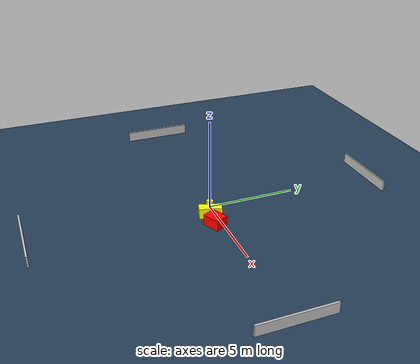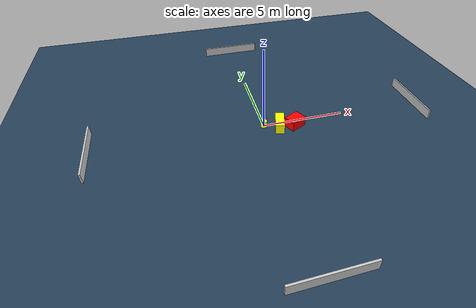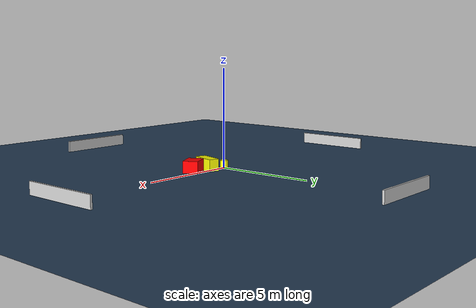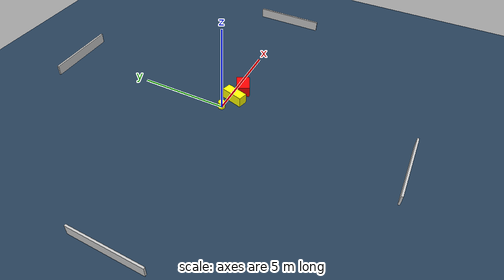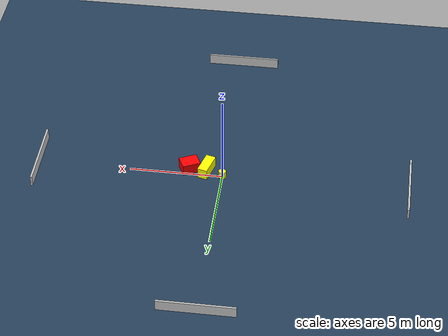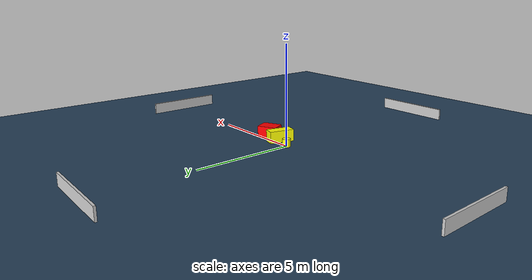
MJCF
<?xml version="1.0" ?>
<mujoco model="generated_environment">
  <option timestep="0.01" integrator="RK4" cone="elliptic"/>
  <default>
    <geom density="1"/>
  </default>
  <asset>
    <texture builtin="gradient" height="3072" name="skybox" rgb1="0.3 0.5 0.7" rgb2="0 0 0" type="skybox" width="512"/>
    <texture builtin="checker" height="300" name="groundplane" rgb1="0.2 0.3 0.4" rgb2="0.1 0.2 0.3" type="2d" width="300"/>
    <material name="groundplane" reflectance="0.2" texrepeat="5 5" texture="groundplane"/>
  </asset>
  <worldbody>
    <light dir="0 0 -1" directional="true" pos="0 0 1.5"/>
    <geom condim="3" friction="0.5 0.005 0.001" material="groundplane" name="floor" pos="0 0 0" size="0 0 0.05" type="plane"/>
    <body name="walls">
      <geom name="wall_1" condim="4" pos="-10.0 0.0 0.3" rgba="0.800000011920929 0.800000011920929 0.800000011920929 1.0" size="0.05 2.0 0.3" type="box"/>
      <geom name="wall_2" condim="4" pos="10.0 0.0 0.3" rgba="0.800000011920929 0.800000011920929 0.800000011920929 1.0" size="0.05 2.0 0.3" type="box"/>
      <geom name="wall_3" condim="4" pos="0.0 -10.0 0.3" rgba="0.800000011920929 0.800000011920929 0.800000011920929 1.0" size="2.0 0.05 0.3" type="box"/>
      <geom name="wall_4" condim="4" pos="0.0 10.0 0.3" rgba="0.800000011920929 0.800000011920929 0.800000011920929 1.0" size="2.0 0.05 0.3" type="box"/>
    </body>
    <body name="robot">
      <joint name="joint_x" type="slide" pos="0 0 0" axis="1 0 0"/>
      <joint name="joint_y" type="slide" pos="0 0 0" axis="0 1 0"/>
      <geom name="robot" type="cylinder" pos="0.0 0.0 0.2" size="0.2 0.2 0.0" mass="5.0" friction="1.0 0.005 0.0001" condim="4" rgba="1.0 1.0 0.0 1.0"/>
    </body>
    <body name="obstacle_1_movable">
      <geom name="obstacle_1_movable" condim="4" pos="0.8917686379549763 -0.3300587551425103 0.3" euler="0 0 254.73836622623915" friction="0.0 0.005 0.001" rgba="1.0 1.0 0.0 1.0" size="0.6282454034912806 0.26850712678303423 0.3" type="box" mass="0.1"/>
      <joint type="free"/>
    </body>
    <body name="obstacle_2_static">
      <geom name="obstacle_2_static" condim="4" pos="1.8223120167680171 -0.40536041387493943 0.3" euler="0 0 295.7340963786194" friction="0.0 0.005 0.001" rgba="1.0 0.0 0.0 1.0" size="0.3782955631312467 0.4951233524146251 0.3" type="box"/>
    </body>
  </worldbody>
  <actuator>
    <motor name="actuator_x" joint="joint_x" gear="1" ctrlrange="-1 1"/>
    <motor name="actuator_y" joint="joint_y" gear="1" ctrlrange="-1 1"/>
  </actuator>
</mujoco>
